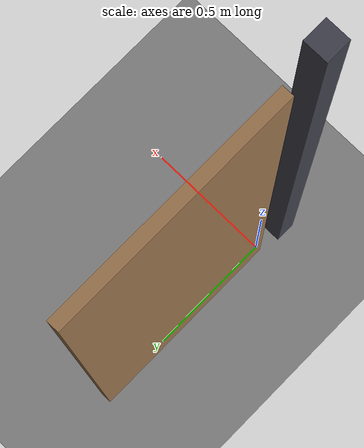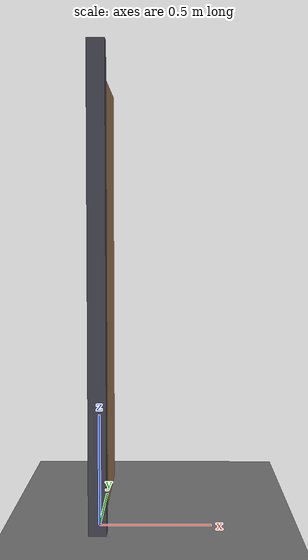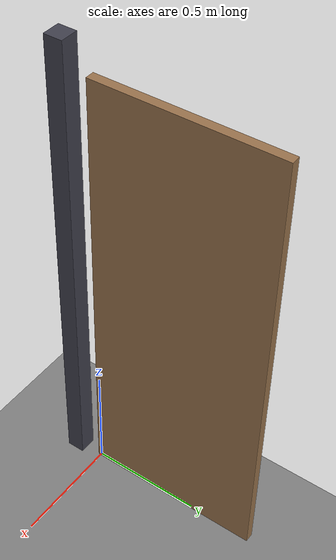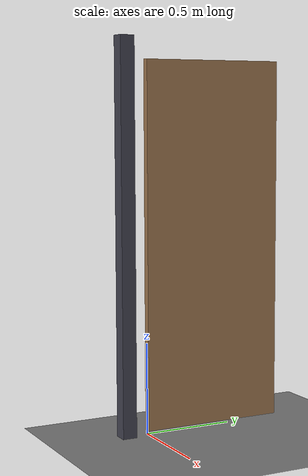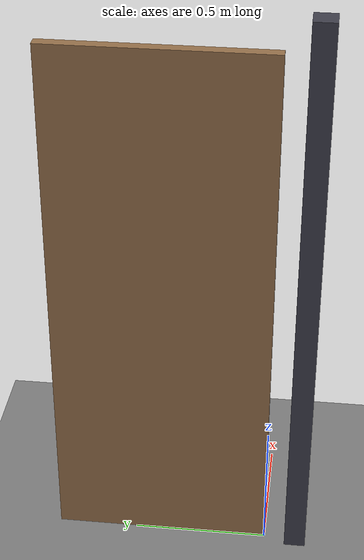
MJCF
<mujoco model="a_door_swings_shut_and_stays_shut">
  <compiler angle="radian"/>
  <option timestep="0.002"/>
  <worldbody>
    <geom name="floor" type="plane" size="8 8 0.1" friction="0.8 0.005 0.002"/>
    <body name="frame">
      <geom name="frame" type="box" pos="0 -0.12 1.07" size="0.04 0.04 1.07" rgba="0.25 0.25 0.3 1"/>
    </body>
    <body name="door" pos="0 0 1.02">
      <joint name="hinge" type="hinge" pos="0 0 0" axis="0 0 1" limited="true" range="0 1.74533" stiffness="20" springref="-0.174533" damping="20"/>
      <geom name="door" type="box" pos="0 0.4 0" size="0.02 0.4 1" mass="20" rgba="0.6 0.45 0.3 1"/>
    </body>
  </worldbody>
  <keyframe>
    <key name="start" qpos="1.39626" qvel="0"/>
  </keyframe>
</mujoco>
